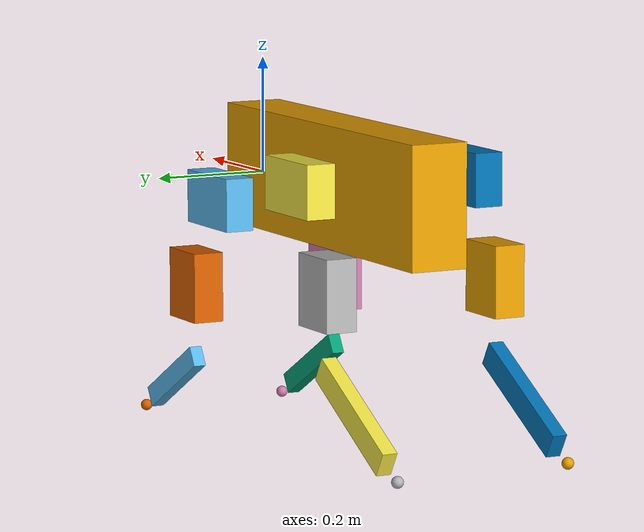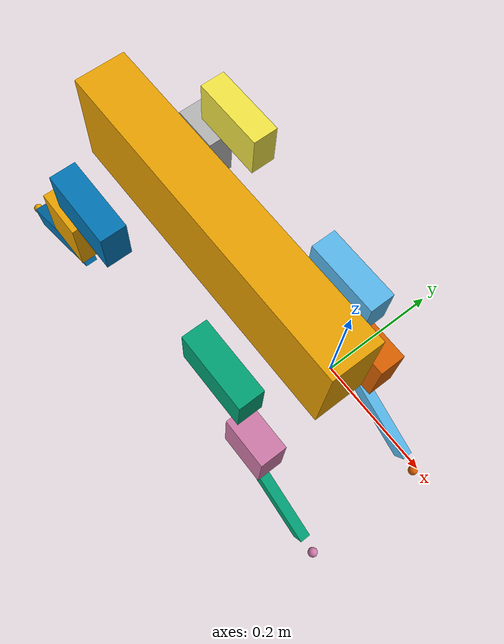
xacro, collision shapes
<?xml version="1.0"?>

<robot xmlns:xacro="http://www.ros.org/wiki/xacro" name="dragon">

<xacro:include filename="$(find dragon_description)/urdf/dragon_three_dof.urdf.xacro"/>
<xacro:include filename="$(find dragon_description)/urdf/dragon_three_dof.transmission.xacro"/>
<xacro:include filename="$(find dragon_description)/urdf/dragon_three_dof.gazebo.xacro"/>

</robot>

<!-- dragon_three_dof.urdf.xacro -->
<robot xmlns:xacro="http://www.ros.org/wiki/xacro" name="dragon">

	<!--*********************  MACRO CONSTS  ************************-->

	<xacro:property name="FileStr"       value="package://dragon_description/meshes/" />
	<xacro:property name="BodySTL"       value="body_unit_m.stl" />
	<xacro:property name="ShoulderSTL"   value="body_part.stl" />
	<xacro:property name="LegSTL"        value="upper_leg.stl" />
	<xacro:property name="FrontShineSTL" value="front_shine.stl" />
	<xacro:property name="BackShineSTL"  value="back_shine.stl" />

	<xacro:property name="Hip_Con_Lower" value=".698131689" />
	<xacro:property name="Hip_Con_Upper" value=".78539815" />
	<xacro:property name="Damping"       value="0.01" />
	<xacro:property name="Friction"      value="0" />
	<xacro:property name="PI"            value="3.141592698" />
	<xacro:property name="Effort_Limit"            value="50" />
	<xacro:property name="Velocity_Limit"            value="1" />

	<!--*********************  MACRO TEMPLATES  ***********************-->
	<!-- Upper MACRO -->
	<xacro:macro name="Upper" params="Name Yaw Sgn Jo_Ori_X Jo_Ori_Y Jo_Ori_Z">
		<link name="${Name}_upper">
			<visual>
				<geometry>
					<mesh filename="${FileStr}${ShoulderSTL}"/>
				</geometry>
				<origin xyz="0 0 0" rpy="${PI/2} 0 ${Yaw}" />
			</visual>
			<collision>
				<geometry>
					<box size=".15 .09 .05"/>
				</geometry>
				<origin xyz="${Sgn*.104860} -.000933 .017767" rpy="${PI/2} 0 ${Yaw}" />
			</collision>
			<inertial>
				<mass value=".67833686"/>
				<inertia ixx=".000458198" ixy="-.000198409" ixz="-.000000564" iyy=".005121443" iyz="-.000002605" izz=".00519021"/>
				<origin xyz="${Sgn*.104860} -.000933 .017767" rpy="${PI/2} 0 ${Yaw}" />
			</inertial>
		</link>
		<joint name="${Name}_pitch" type="revolute">
			<parent link="body"/>
			<child link="${Name}_upper"/>
			<axis xyz="1 0 0"/>
			<origin xyz="${Jo_Ori_X} ${Jo_Ori_Y} ${Jo_Ori_Z}" rpy="0 0 0"/>
			<dynamics damping="${Damping}" friction="${Friction}"/>
			<limit lower="-0.5" upper="0.5" effort="${Effort_Limit}" velocity="${Velocity_Limit}"/>
		</joint>
	</xacro:macro>
	<!-- LEG MACRO -->
	<xacro:macro name="Leg" params="Name Yaw Sgn Limit_L Limit_U">
		<link name="${Name}_leg">
			<visual>
				<geometry>
					<mesh filename="${FileStr}${LegSTL}"/>
				</geometry>
				<origin xyz="0 0 0" rpy="${PI/2} 0 ${Yaw}" />
			</visual>
			<collision>
				<geometry>
					<box size=".098 .12 .054"/>
				</geometry>
				<origin xyz="${Sgn*.008484} -.001262 -.141167" rpy="${PI/2} 0 ${Yaw}" />
			</collision>
			<inertial>
				<mass value=".58240446"/>
				<inertia ixx=".004146058" ixy=".000104152" ixz="-.000001286" iyy=".000305157" iyz="-.00000174" izz=".0042282"/>
				<origin xyz="${Sgn*.008484} -.001262 -.141167" rpy="${PI/2} 0 ${Yaw}" />
			</inertial>
		</link>
		<joint name="${Name}_hip" type="revolute">
			<parent link="${Name}_upper"/>
			<child link="${Name}_leg"/>
			<axis xyz="0 1 0"/>
			<origin xyz="0 0 0" rpy="0 0 0"/>
			<dynamics damping="${Damping}" friction="${Friction}"/>
			<limit lower="${Limit_L}" upper="${Limit_U}" effort="${Effort_Limit}" velocity="${Velocity_Limit}"/>
		</joint>
	</xacro:macro>
	<!-- FRONT SHINE MACRO -->
	<xacro:macro name="Front_Shine" params="Name">
		<link name="${Name}_front_shine">
			<visual>
				<geometry>
					<mesh filename="${FileStr}${FrontShineSTL}"/>
				</geometry>
				<origin xyz="0 0 0" rpy="0 ${PI} ${PI/-2}" />
			</visual>
			<collision>
				<geometry>
					<box size=".022 .035995 .20"/>
				</geometry>
				<origin xyz="-.000015 -.000487 -.083659" rpy="0 ${PI} ${PI/-2}" />
			</collision>
			<inertial>
				<mass value=".29186134"/>
				<inertia ixx=".001325132" ixy="0" ixz="-.000000355" iyy=".001312476" iyz="-.000006983" izz=".000039606"/>
				<origin xyz="-.000015 -.000487 -.083659" rpy="0 ${PI} ${PI/-2}" />
			</inertial>
		</link>
		<joint name="${Name}_front_knee" type="revolute">
			<parent link="${Name}_front_leg"/>
			<child link="${Name}_front_shine"/>
			<axis xyz="0 1 0"/>
			<origin xyz="0 0 -0.275" rpy="0 0 0"/>
			<dynamics damping="${Damping}" friction="${Friction}"/>
			<limit lower="-1.919862144" upper="-.174532922" effort="${Effort_Limit}" velocity="${Velocity_Limit}"/>
		</joint>
	</xacro:macro>
	<!-- BACK SHINE MACRO -->
	<xacro:macro name="Back_Shine" params="Name">
		<link name="${Name}_back_shine">
			<visual>
				<geometry>
					<mesh filename="${FileStr}${BackShineSTL}"/>
				</geometry>
				<origin xyz="0 0 0" rpy="0 0 ${PI/2}" />
			</visual>
			<collision>
				<geometry>
					<box size=".026 .043998 .24"/>
				</geometry>
				<origin xyz="-.000456 -.000290 -.104180" rpy="0 0 ${PI/2}" />
			</collision>
			<inertial>
				<mass value=".29186134"/>
				<inertia ixx=".001782767" ixy="-.000000069" ixz=".000008825" iyy=".001756178" iyz="-.000011054" izz=".000048789"/>
				<origin xyz="-.000456 -.000290 -.104180" rpy="0 0 ${PI/2}" />
			</inertial>
		</link>
		<joint name="${Name}_back_knee" type="revolute">
			<parent link="${Name}_back_leg"/>
			<child link="${Name}_back_shine"/>
			<axis xyz="0 1 0"/>
			<origin xyz="0 0 -.275" rpy="0 0 0"/>
			<dynamics damping="${Damping}" friction="${Friction}"/>
			<limit lower=".174532922" upper="1.919862144" effort="${Effort_Limit}" velocity="${Velocity_Limit}"/>
		</joint>
	</xacro:macro>
	<!-- FOOT MACRO -->
	<xacro:macro name="Foot" params="Name Jo_Ori_Z">
		<link name="${Name}_feet">
			<visual>
				<geometry>
					<sphere radius=".01"/>
				</geometry>
				<origin xyz="0 0 0" rpy="0 0 0" />
			</visual>
			<collision>
				<geometry>
					<sphere radius=".01"/>
				</geometry>
				<origin xyz="0 0 0" rpy="0 0 0" />
			</collision>
			<inertial>
				<mass value=".1"/>
				<inertia ixx=".000004" ixy="0" ixz="0" iyy=".000004" iyz="0" izz=".000004"/>
				<origin xyz="0 0 0" rpy="0 0 0" />
			</inertial>
		</link>
		<joint name="${Name}_foot" type="revolute">
			<parent link="${Name}_shine"/>
			<child link="${Name}_feet"/>
			<origin xyz="0 0 ${Jo_Ori_Z}" rpy="0 0 0"/>
			<dynamics damping="${Damping}" friction="${Friction}"/>
			<limit lower="0" upper="0" effort="0" velocity="0"/>
		</joint>
	</xacro:macro>

	<!--*********  VIRTUAL LINK, BODY LINK and VIRTUAL JOINT  *********-->

	<link name="body">
		<visual>
			<geometry>
				<mesh filename="${FileStr}${BodySTL}"/>
			</geometry>
			<origin xyz="0 0 0" rpy="${PI/2} 0 ${PI/2}"/>
		</visual>
		<collision>
			<geometry>
				<box size=".1 .206 .666"/>
			</geometry>
			<origin xyz="-.294161 -.000952 .016932" rpy="${PI/2} 0 ${PI/2}"/>
		</collision>
		<inertial>
			<mass value="9.9629698"/>
			<inertia ixx=".506565255" ixy="-.000206853" ixz="-.004881012" iyy=".516386594" iyz=".006092892" izz=".074902421"/>
			<origin xyz="-.294161 -.000952 .016932" rpy="${PI/2} 0 ${PI/2}"/>
		</inertial>
	</link>

<!--********  LINKS and JOINTS defined by MACRO TEMPLATES  ********-->

<xacro:Upper Name="left_front"  Yaw="${PI}" Sgn="-1" Jo_Ori_X="0"     Jo_Ori_Y=".135"  Jo_Ori_Z="-.045"/>
<xacro:Upper Name="right_front" Yaw="${PI}" Sgn="-1" Jo_Ori_X="0"     Jo_Ori_Y="-.135" Jo_Ori_Z="-.045"/>
<xacro:Upper Name="left_back"   Yaw="0"     Sgn="1"  Jo_Ori_X="-.545" Jo_Ori_Y=".155"  Jo_Ori_Z=".02"/>
<xacro:Upper Name="right_back"  Yaw="0"     Sgn="1"  Jo_Ori_X="-.545" Jo_Ori_Y="-.155" Jo_Ori_Z=".02"/>

<xacro:Leg   Name="left_front"  Yaw="${PI}" Sgn="-1" Limit_L="${-Hip_Con_Lower}" Limit_U="${Hip_Con_Upper}"/>
<xacro:Leg   Name="right_front" Yaw="${PI}" Sgn="-1" Limit_L="${-Hip_Con_Lower}" Limit_U="${Hip_Con_Upper}"/>
<xacro:Leg   Name="left_back"   Yaw="0"     Sgn="1"  Limit_L="${-Hip_Con_Upper}" Limit_U="${Hip_Con_Lower}"/>
<xacro:Leg   Name="right_back"  Yaw="0"     Sgn="1"  Limit_L="${-Hip_Con_Upper}" Limit_U="${Hip_Con_Lower}"/>

<xacro:Front_Shine Name="left" />
<xacro:Front_Shine Name="right" />
<xacro:Back_Shine  Name="left" />
<xacro:Back_Shine  Name="right" />

<xacro:Foot Name="left_front"  Jo_Ori_Z="-.226"/>
<xacro:Foot Name="right_front" Jo_Ori_Z="-.226"/>
<xacro:Foot Name="left_back"   Jo_Ori_Z="-.266"/>
<xacro:Foot Name="right_back"  Jo_Ori_Z="-.266"/>

</robot>
